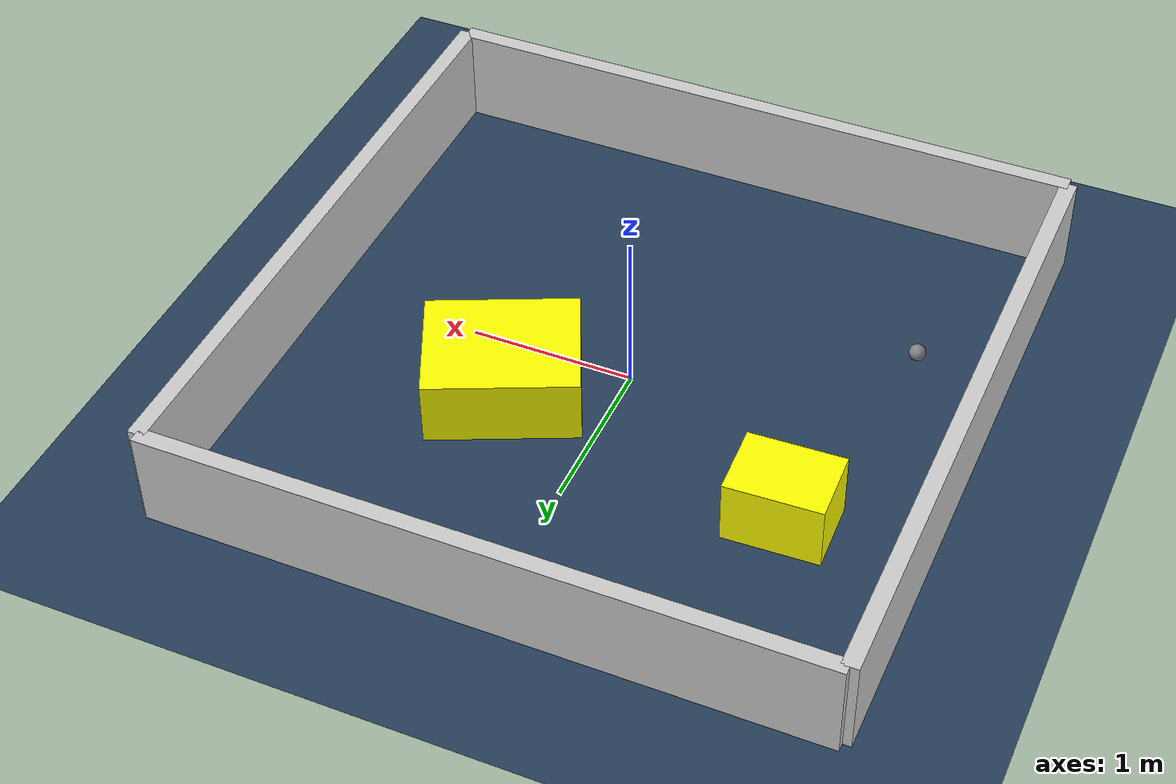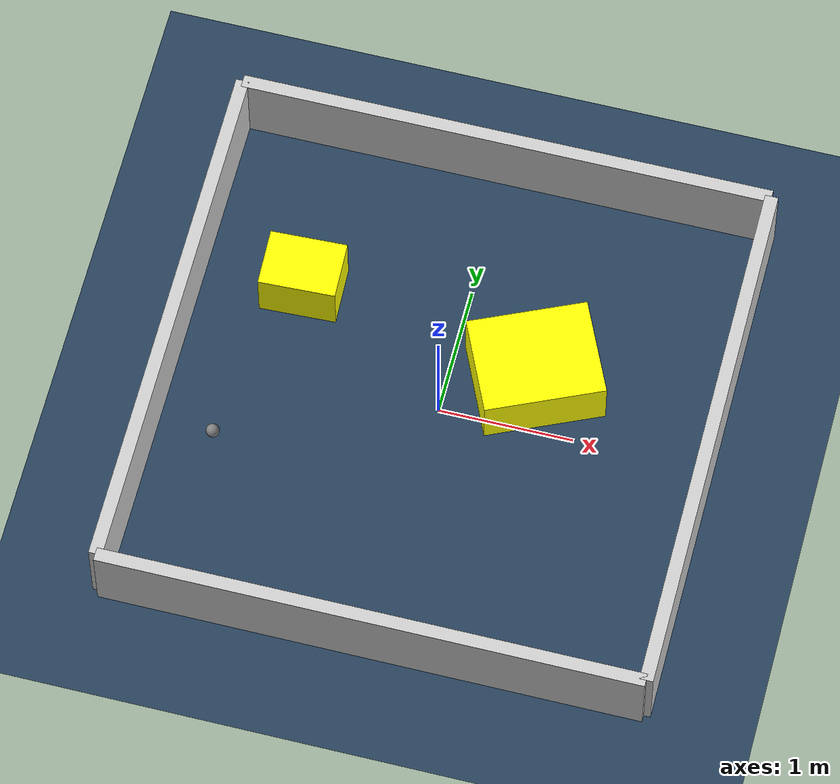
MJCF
<?xml version="1.0" ?>
<mujoco model="generated_environment">
  <option timestep="0.01" integrator="RK4" cone="elliptic"/>
  <default>
    <geom density="1"/>
  </default>
  <asset>
    <texture builtin="gradient" height="3072" rgb1="0.3 0.5 0.7" rgb2="0 0 0" type="skybox" width="512"/>
    <texture builtin="checker" height="300" mark="edge" markrgb="0.8 0.8 0.8" name="groundplane" rgb1="0.2 0.3 0.4" rgb2="0.1 0.2 0.3" type="2d" width="300"/>
    <material name="groundplane" reflectance="0.2" texrepeat="5 5" texture="groundplane" texuniform="true"/>
    <material name="robot" rgba="0.0 1.0 0.0 1"/>
  </asset>
  <worldbody>
    <light dir="0 0 -1" directional="true" pos="0 0 1.5"/>
    <geom condim="4" friction="1.0 0.005 0.001" material="groundplane" name="floor" size="0 0 0.05" type="plane"/>
    <body name="walls">
      <geom name="wall_1" condim="4" pos="-2.0 0.0 0.3" rgba="0.800000011920929 0.800000011920929 0.800000011920929 1.0" size="0.05 2.0 0.3" type="box"/>
      <geom name="wall_2" condim="4" pos="2.0 0.0 0.3" rgba="0.800000011920929 0.800000011920929 0.800000011920929 1.0" size="0.05 2.0 0.3" type="box"/>
      <geom name="wall_3" condim="4" pos="0.0 -2.0 0.3" rgba="0.800000011920929 0.800000011920929 0.800000011920929 1.0" size="2.0 0.05 0.3" type="box"/>
      <geom name="wall_4" condim="4" pos="0.0 2.0 0.3" rgba="0.800000011920929 0.800000011920929 0.800000011920929 1.0" size="2.0 0.05 0.3" type="box"/>
    </body>
    <body name="robot">
      <joint name="joint_x" type="slide" pos="0 0 0" axis="1 0 0"/>
      <joint name="joint_y" type="slide" pos="0 0 0" axis="0 1 0"/>
      <geom name="robot" type="sphere" pos="-1.5184831933296015 -0.6580503768051811 0.2" size="0.05" mass="5." friction="1.0 0.005 0.0001" condim="4"/>
      <site name="sensor_ball"/>
    </body>
    <body name="obstacle_1_movable">
      <geom name="obstacle_1_movable" condim="4" pos="0.6226103006609083 0.4036192604110993 0.2" euler="0 0 24.43249451699642" friction="1.0 0.005 0.001" rgba="1 1 0 1" size="0.4495514659580333 0.3701349362427302 0.2" type="box" mass="0.1"/>
      <joint type="free"/>
    </body>
    <body name="obstacle_2_movable">
      <geom name="obstacle_2_movable" condim="4" pos="-1.209013328553095 0.7253739871527047 0.2" euler="0 0 2.3083418374225007" friction="1.0 0.005 0.001" rgba="1 1 0 1" size="0.28799900751393304 0.21758190317530796 0.2" type="box" mass="0.1"/>
      <joint type="free"/>
    </body>
  </worldbody>
  <actuator>
    <motor name="actuator_x" joint="joint_x" gear="1" ctrlrange="-1 1"/>
    <motor name="actuator_y" joint="joint_y" gear="1" ctrlrange="-1 1"/>
  </actuator>
</mujoco>
